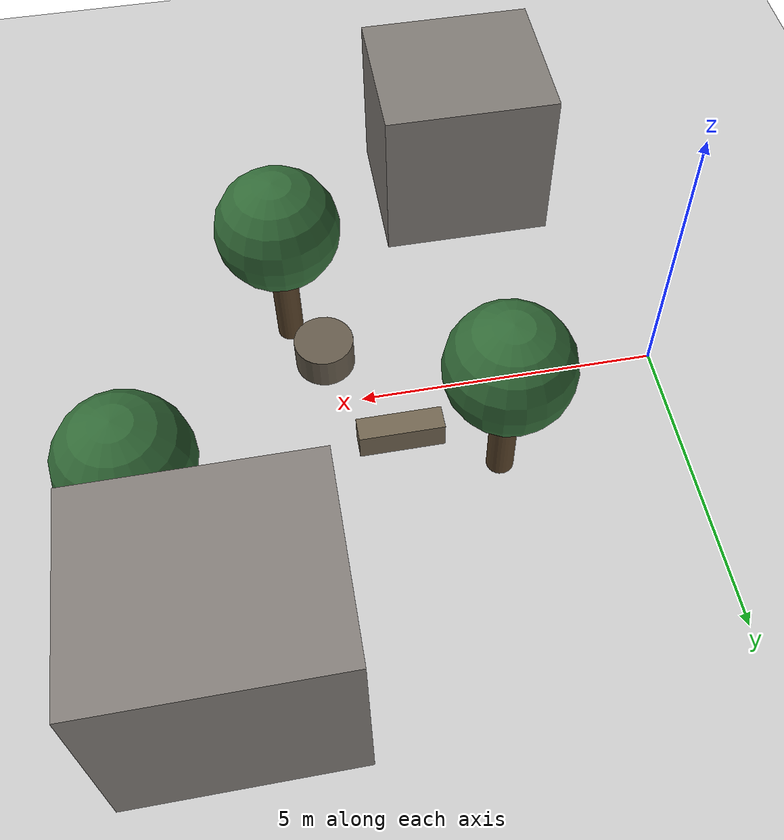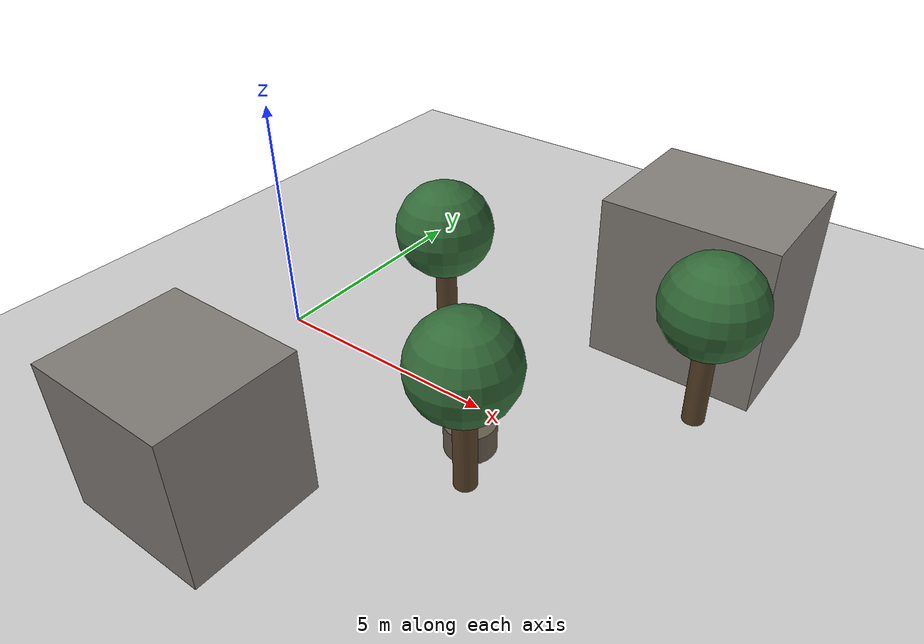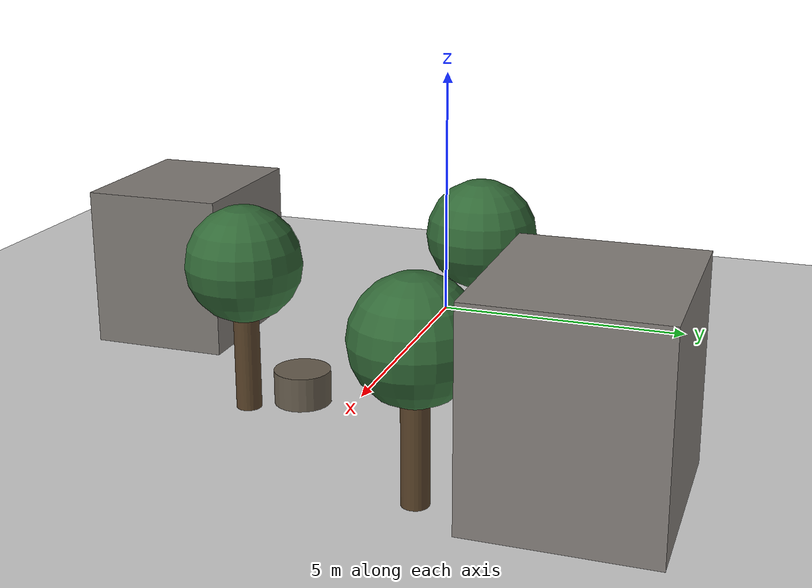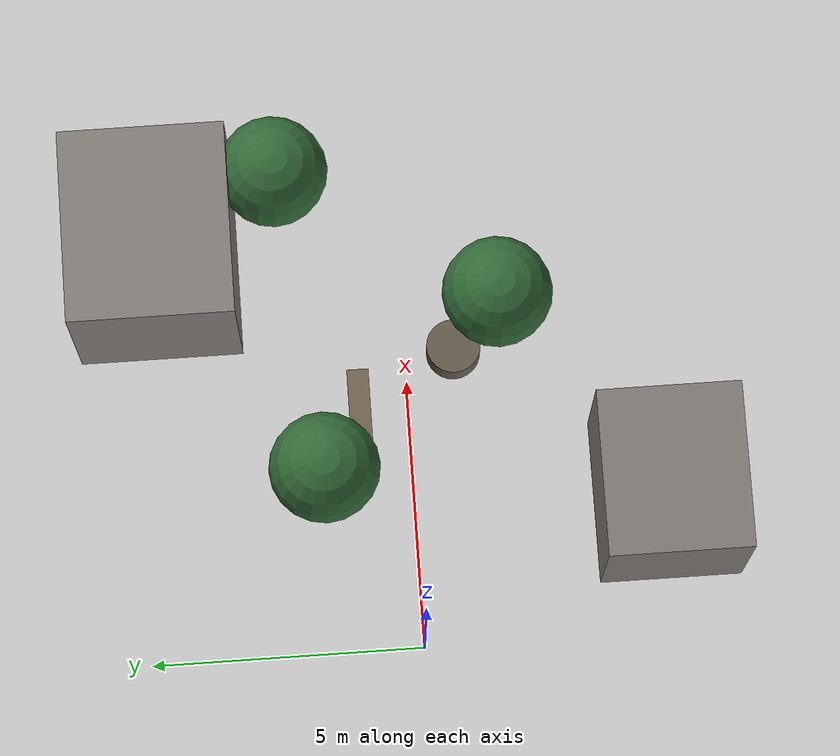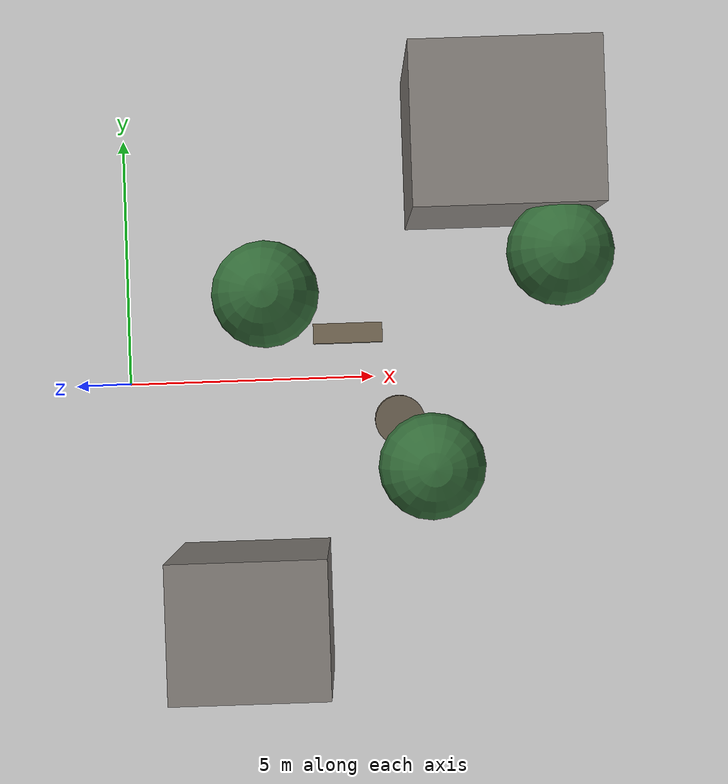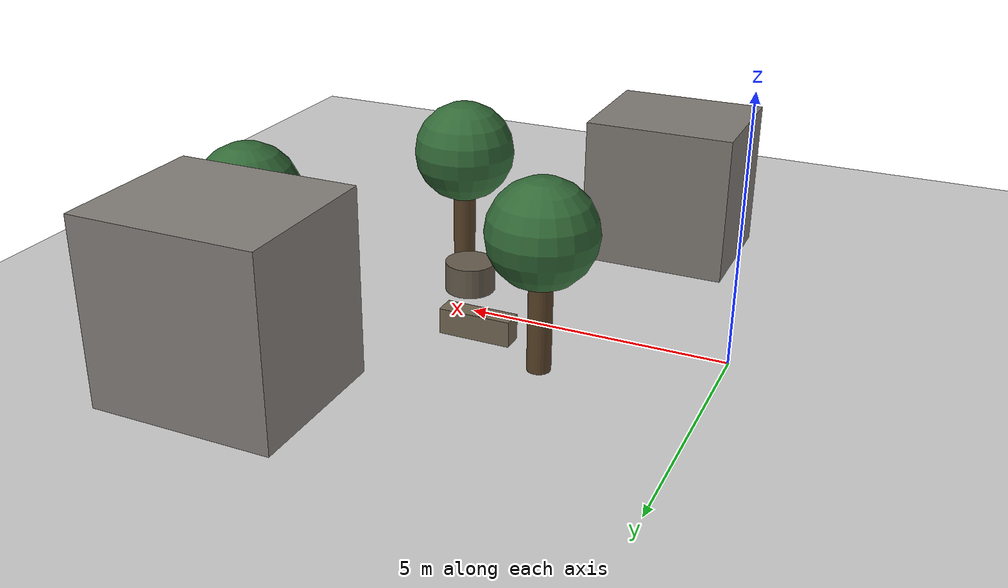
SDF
<?xml version="1.0"?>
<sdf version="1.6">
  <world name="plaza_world">
    <include><uri>model://sun</uri></include>
    <include><uri>model://ground_plane</uri></include>
    <light name="fill" type="directional"><pose>4 0 10 0 0 0</pose>
      <diffuse>0.7 0.7 0.68 1</diffuse><specular>0.2 0.2 0.2 1</specular>
      <direction>-0.1 0.2 -1.0</direction><cast_shadows>false</cast_shadows></light>
    <physics type="ode"><max_step_size>0.005</max_step_size>
      <real_time_factor>1.0</real_time_factor><real_time_update_rate>200</real_time_update_rate></physics>
    <plugin name="gazebo_ros_state" filename="libgazebo_ros_state.so">
      <ros><namespace>/gazebo</namespace></ros><update_rate>20.0</update_rate></plugin>

    <!-- Perimeter buildings (well off the central route) -->
    <model name="building_ne"><static>true</static><link name="l">
      <collision name="c"><pose>7.5 4.5 1.75 0 0 0</pose><geometry><box><size>3.5 3.0 3.5</size></box></geometry></collision>
      <visual name="v"><pose>7.5 4.5 1.75 0 0 0</pose><geometry><box><size>3.5 3.0 3.5</size></box></geometry>
        <material><ambient>0.52 0.50 0.48 1</ambient><diffuse>0.52 0.50 0.48 1</diffuse></material></visual></link></model>
    <model name="building_sw"><static>true</static><link name="l">
      <collision name="c"><pose>2.5 -4.6 1.5 0 0 0</pose><geometry><box><size>3.0 2.6 3.0</size></box></geometry></collision>
      <visual name="v"><pose>2.5 -4.6 1.5 0 0 0</pose><geometry><box><size>3.0 2.6 3.0</size></box></geometry>
        <material><ambient>0.50 0.48 0.46 1</ambient><diffuse>0.50 0.48 0.46 1</diffuse></material></visual></link></model>

    <!-- Trees: thin trunk (sensed) + canopy (visual only) -->
    <model name="tree_1"><static>true</static><link name="l">
      <collision name="c"><pose>3.0 1.6 1.0 0 0 0</pose><geometry><cylinder><radius>0.22</radius><length>2.0</length></cylinder></geometry></collision>
      <visual name="trunk"><pose>3.0 1.6 1.0 0 0 0</pose><geometry><cylinder><radius>0.22</radius><length>2.0</length></cylinder></geometry>
        <material><ambient>0.35 0.26 0.16 1</ambient><diffuse>0.35 0.26 0.16 1</diffuse></material></visual>
      <visual name="canopy"><pose>3.0 1.6 2.6 0 0 0</pose><geometry><sphere><radius>1.0</radius></sphere></geometry>
        <material><ambient>0.20 0.42 0.22 1</ambient><diffuse>0.20 0.42 0.22 1</diffuse></material></visual></link></model>
    <model name="tree_2"><static>true</static><link name="l">
      <collision name="c"><pose>6.0 -1.7 1.0 0 0 0</pose><geometry><cylinder><radius>0.22</radius><length>2.0</length></cylinder></geometry></collision>
      <visual name="trunk"><pose>6.0 -1.7 1.0 0 0 0</pose><geometry><cylinder><radius>0.22</radius><length>2.0</length></cylinder></geometry>
        <material><ambient>0.35 0.26 0.16 1</ambient><diffuse>0.35 0.26 0.16 1</diffuse></material></visual>
      <visual name="canopy"><pose>6.0 -1.7 2.6 0 0 0</pose><geometry><sphere><radius>1.0</radius></sphere></geometry>
        <material><ambient>0.20 0.42 0.22 1</ambient><diffuse>0.20 0.42 0.22 1</diffuse></material></visual></link></model>
    <model name="tree_3"><static>true</static><link name="l">
      <collision name="c"><pose>8.5 2.2 1.0 0 0 0</pose><geometry><cylinder><radius>0.22</radius><length>2.0</length></cylinder></geometry></collision>
      <visual name="trunk"><pose>8.5 2.2 1.0 0 0 0</pose><geometry><cylinder><radius>0.22</radius><length>2.0</length></cylinder></geometry>
        <material><ambient>0.35 0.26 0.16 1</ambient><diffuse>0.35 0.26 0.16 1</diffuse></material></visual>
      <visual name="canopy"><pose>8.5 2.2 2.6 0 0 0</pose><geometry><sphere><radius>1.0</radius></sphere></geometry>
        <material><ambient>0.20 0.42 0.22 1</ambient><diffuse>0.20 0.42 0.22 1</diffuse></material></visual></link></model>

    <!-- Benches + a planter near the route -->
    <model name="bench_1"><static>true</static><link name="l">
      <collision name="c"><pose>4.5 0.9 0.25 0 0 0</pose><geometry><box><size>1.4 0.4 0.5</size></box></geometry></collision>
      <visual name="v"><pose>4.5 0.9 0.25 0 0 0</pose><geometry><box><size>1.4 0.4 0.5</size></box></geometry>
        <material><ambient>0.45 0.40 0.32 1</ambient><diffuse>0.45 0.40 0.32 1</diffuse></material></visual></link></model>
    <model name="planter_1"><static>true</static><link name="l">
      <collision name="c"><pose>5.5 -0.9 0.3 0 0 0</pose><geometry><cylinder><radius>0.5</radius><length>0.6</length></cylinder></geometry></collision>
      <visual name="v"><pose>5.5 -0.9 0.3 0 0 0</pose><geometry><cylinder><radius>0.5</radius><length>0.6</length></cylinder></geometry>
        <material><ambient>0.40 0.36 0.30 1</ambient><diffuse>0.40 0.36 0.30 1</diffuse></material></visual></link></model>
  </world>
</sdf>
